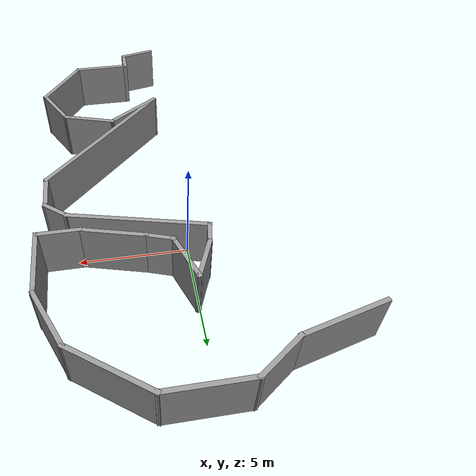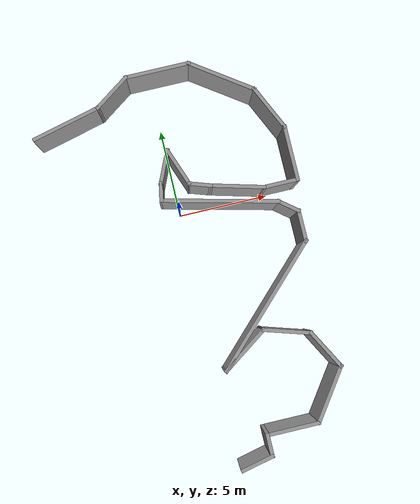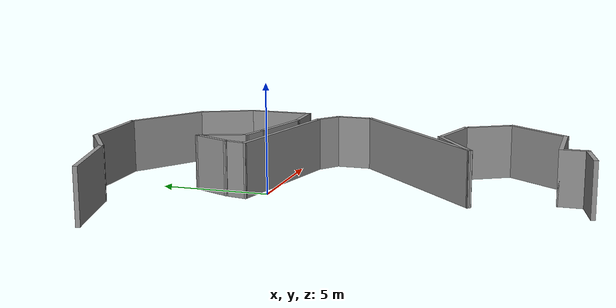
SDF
<sdf version='1.4'>
  <model name='paredesMontmelo'>
    <link name='Wall_100'>
      <collision name='Wall_100_Collision'>
        <geometry>
          <box>
            <size>1.861250 0.200000 2.500000</size>
          </box>
        </geometry>
        <pose>0.000000 0.000000 1.250000 0.000000 0.000000 0.000000</pose>
      </collision>
      <visual name='Wall_100_Visual'>
        <pose>0.000000 0.000000 1.250000 0.000000 0.000000 0.000000</pose>
        <geometry>
          <box>
            <size>1.861250 0.200000 2.500000</size>
          </box>
        </geometry>
        <material>
          <script>
            <uri>file://media/materials/scripts/gazebo.material</uri>
            <name>Gazebo/Grey</name>
          </script>
        </material>
      </visual>
      <velocity_decay>
        <linear>0.000000</linear>
        <angular>0.000000</angular>
      </velocity_decay>
      <pose>6.167900 -2.328510 0.000000 0.000000 0.000000 -1.570800</pose>
    </link>
    <link name='Wall_101'>
      <collision name='Wall_101_Collision'>
        <geometry>
          <box>
            <size>8.292260 0.200000 2.500000</size>
          </box>
        </geometry>
        <pose>0.000000 0.000000 1.250000 0.000000 0.000000 0.000000</pose>
      </collision>
      <visual name='Wall_101_Visual'>
        <pose>0.000000 0.000000 1.250000 0.000000 0.000000 0.000000</pose>
        <geometry>
          <box>
            <size>8.292260 0.200000 2.500000</size>
          </box>
        </geometry>
        <material>
          <script>
            <uri>file://media/materials/scripts/gazebo.material</uri>
            <name>Gazebo/Grey</name>
          </script>
        </material>
      </visual>
      <velocity_decay>
        <linear>0.000000</linear>
        <angular>0.000000</angular>
      </velocity_decay>
      <pose>3.306850 -6.020180 0.000000 0.000000 0.000000 -2.356190</pose>
    </link>
    <link name='Wall_102'>
      <collision name='Wall_102_Collision'>
        <geometry>
          <box>
            <size>3.118520 0.200000 2.500000</size>
          </box>
        </geometry>
        <pose>0.000000 0.000000 1.250000 0.000000 0.000000 0.000000</pose>
      </collision>
      <visual name='Wall_102_Visual'>
        <pose>0.000000 0.000000 1.250000 0.000000 0.000000 0.000000</pose>
        <geometry>
          <box>
            <size>3.118520 0.200000 2.500000</size>
          </box>
        </geometry>
        <material>
          <script>
            <uri>file://media/materials/scripts/gazebo.material</uri>
            <name>Gazebo/Grey</name>
          </script>
        </material>
      </visual>
      <velocity_decay>
        <linear>0.000000</linear>
        <angular>0.000000</angular>
      </velocity_decay>
      <pose>1.645600 -8.050600 0.000000 0.000000 0.000000 0.605545</pose>
    </link>
    <link name='Wall_103'>
      <collision name='Wall_103_Collision'>
        <geometry>
          <box>
            <size>2.710610 0.200000 2.500000</size>
          </box>
        </geometry>
        <pose>0.000000 0.000000 1.250000 0.000000 0.000000 0.000000</pose>
      </collision>
      <visual name='Wall_103_Visual'>
        <pose>0.000000 0.000000 1.250000 0.000000 0.000000 0.000000</pose>
        <geometry>
          <box>
            <size>2.710610 0.200000 2.500000</size>
          </box>
        </geometry>
        <material>
          <script>
            <uri>file://media/materials/scripts/gazebo.material</uri>
            <name>Gazebo/Grey</name>
          </script>
        </material>
      </visual>
      <velocity_decay>
        <linear>0.000000</linear>
        <angular>0.000000</angular>
      </velocity_decay>
      <pose>4.045190 -7.589140 0.000000 0.000000 0.000000 -0.298499</pose>
    </link>
    <link name='Wall_104'>
      <collision name='Wall_104_Collision'>
        <geometry>
          <box>
            <size>2.512830 0.200000 2.500000</size>
          </box>
        </geometry>
        <pose>0.000000 0.000000 1.250000 0.000000 0.000000 0.000000</pose>
      </collision>
      <visual name='Wall_104_Visual'>
        <pose>0.000000 0.000000 1.250000 0.000000 0.000000 0.000000</pose>
        <geometry>
          <box>
            <size>2.512830 0.200000 2.500000</size>
          </box>
        </geometry>
        <material>
          <script>
            <uri>file://media/materials/scripts/gazebo.material</uri>
            <name>Gazebo/Grey</name>
          </script>
        </material>
      </visual>
      <velocity_decay>
        <linear>0.000000</linear>
        <angular>0.000000</angular>
      </velocity_decay>
      <pose>5.798730 -8.973520 0.000000 0.000000 0.000000 -1.071450</pose>
    </link>
    <link name='Wall_105'>
      <collision name='Wall_105_Collision'>
        <geometry>
          <box>
            <size>3.375700 0.200000 2.500000</size>
          </box>
        </geometry>
        <pose>0.000000 0.000000 1.250000 0.000000 0.000000 0.000000</pose>
      </collision>
      <visual name='Wall_105_Visual'>
        <pose>0.000000 0.000000 1.250000 0.000000 0.000000 0.000000</pose>
        <geometry>
          <box>
            <size>3.375700 0.200000 2.500000</size>
          </box>
        </geometry>
        <material>
          <script>
            <uri>file://media/materials/scripts/gazebo.material</uri>
            <name>Gazebo/Grey</name>
          </script>
        </material>
      </visual>
      <velocity_decay>
        <linear>0.000000</linear>
        <angular>0.000000</angular>
      </velocity_decay>
      <pose>5.429570 -11.280800 0.000000 0.000000 0.000000 -2.191050</pose>
    </link>
    <link name='Wall_106'>
      <collision name='Wall_106_Collision'>
        <geometry>
          <box>
            <size>2.968750 0.200000 2.500000</size>
          </box>
        </geometry>
        <pose>0.000000 0.000000 1.250000 0.000000 0.000000 0.000000</pose>
      </collision>
      <visual name='Wall_106_Visual'>
        <pose>0.000000 0.000000 1.250000 0.000000 0.000000 0.000000</pose>
        <geometry>
          <box>
            <size>2.968750 0.200000 2.500000</size>
          </box>
        </geometry>
        <material>
          <script>
            <uri>file://media/materials/scripts/gazebo.material</uri>
            <name>Gazebo/Grey</name>
          </script>
        </material>
      </visual>
      <velocity_decay>
        <linear>0.000000</linear>
        <angular>0.000000</angular>
      </velocity_decay>
      <pose>3.122270 -12.572900 0.000000 0.000000 0.000000 3.141590</pose>
    </link>
    <link name='Wall_107'>
      <collision name='Wall_107_Collision'>
        <geometry>
          <box>
            <size>1.307500 0.200000 2.500000</size>
          </box>
        </geometry>
        <pose>0.000000 0.000000 1.250000 0.000000 0.000000 0.000000</pose>
      </collision>
      <visual name='Wall_107_Visual'>
        <pose>0.000000 0.000000 1.250000 0.000000 0.000000 0.000000</pose>
        <geometry>
          <box>
            <size>1.307500 0.200000 2.500000</size>
          </box>
        </geometry>
        <material>
          <script>
            <uri>file://media/materials/scripts/gazebo.material</uri>
            <name>Gazebo/Grey</name>
          </script>
        </material>
      </visual>
      <velocity_decay>
        <linear>0.000000</linear>
        <angular>0.000000</angular>
      </velocity_decay>
      <pose>1.737890 -13.126600 0.000000 0.000000 0.000000 -1.570800</pose>
    </link>
    <link name='Wall_108'>
      <collision name='Wall_108_Collision'>
        <geometry>
          <box>
            <size>1.901780 0.200000 2.500000</size>
          </box>
        </geometry>
        <pose>0.000000 0.000000 1.250000 0.000000 0.000000 0.000000</pose>
      </collision>
      <visual name='Wall_108_Visual'>
        <pose>0.000000 0.000000 1.250000 0.000000 0.000000 0.000000</pose>
        <geometry>
          <box>
            <size>1.901780 0.200000 2.500000</size>
          </box>
        </geometry>
        <material>
          <script>
            <uri>file://media/materials/scripts/gazebo.material</uri>
            <name>Gazebo/Grey</name>
          </script>
        </material>
      </visual>
      <velocity_decay>
        <linear>0.000000</linear>
        <angular>0.000000</angular>
      </velocity_decay>
      <pose>0.907267 -13.865000 0.000000 0.000000 0.000000 -2.922920</pose>
    </link>
    <link name='Wall_86'>
      <collision name='Wall_86_Collision'>
        <geometry>
          <box>
            <size>4.005290 0.200000 2.500000</size>
          </box>
        </geometry>
        <pose>0.000000 0.000000 1.250000 0.000000 0.000000 0.000000</pose>
      </collision>
      <visual name='Wall_86_Visual'>
        <pose>0.000000 0.000000 1.250000 0.000000 0.000000 0.000000</pose>
        <geometry>
          <box>
            <size>4.005290 0.200000 2.500000</size>
          </box>
        </geometry>
        <material>
          <script>
            <uri>file://media/materials/scripts/gazebo.material</uri>
            <name>Gazebo/Grey</name>
          </script>
        </material>
      </visual>
      <velocity_decay>
        <linear>0.000000</linear>
        <angular>0.000000</angular>
      </velocity_decay>
      <pose>-4.907120 5.977760 0.000000 0.000000 0.000000 0.244979</pose>
    </link>
    <link name='Wall_87'>
      <collision name='Wall_87_Collision'>
        <geometry>
          <box>
            <size>2.453130 0.200000 2.500000</size>
          </box>
        </geometry>
        <pose>0.000000 0.000000 1.250000 0.000000 0.000000 0.000000</pose>
      </collision>
      <visual name='Wall_87_Visual'>
        <pose>0.000000 0.000000 1.250000 0.000000 0.000000 0.000000</pose>
        <geometry>
          <box>
            <size>2.453130 0.200000 2.500000</size>
          </box>
        </geometry>
        <material>
          <script>
            <uri>file://media/materials/scripts/gazebo.material</uri>
            <name>Gazebo/Grey</name>
          </script>
        </material>
      </visual>
      <velocity_decay>
        <linear>0.000000</linear>
        <angular>0.000000</angular>
      </velocity_decay>
      <pose>-2.138360 7.085260 0.000000 0.000000 0.000000 0.610726</pose>
    </link>
    <link name='Wall_88'>
      <collision name='Wall_88_Collision'>
        <geometry>
          <box>
            <size>3.707090 0.200000 2.500000</size>
          </box>
        </geometry>
        <pose>0.000000 0.000000 1.250000 0.000000 0.000000 0.000000</pose>
      </collision>
      <visual name='Wall_88_Visual'>
        <pose>0.000000 0.000000 1.250000 0.000000 0.000000 0.000000</pose>
        <geometry>
          <box>
            <size>3.707090 0.200000 2.500000</size>
          </box>
        </geometry>
        <material>
          <script>
            <uri>file://media/materials/scripts/gazebo.material</uri>
            <name>Gazebo/Grey</name>
          </script>
        </material>
      </visual>
      <velocity_decay>
        <linear>0.000000</linear>
        <angular>0.000000</angular>
      </velocity_decay>
      <pose>0.538099 7.731300 0.000000 0.000000 0.000000 0.000000</pose>
    </link>
    <link name='Wall_89'>
      <collision name='Wall_89_Collision'>
        <geometry>
          <box>
            <size>4.040940 0.200000 2.500000</size>
          </box>
        </geometry>
        <pose>0.000000 0.000000 1.250000 0.000000 0.000000 0.000000</pose>
      </collision>
      <visual name='Wall_89_Visual'>
        <pose>0.000000 0.000000 1.250000 0.000000 0.000000 0.000000</pose>
        <geometry>
          <box>
            <size>4.040940 0.200000 2.500000</size>
          </box>
        </geometry>
        <material>
          <script>
            <uri>file://media/materials/scripts/gazebo.material</uri>
            <name>Gazebo/Grey</name>
          </script>
        </material>
      </visual>
      <velocity_decay>
        <linear>0.000000</linear>
        <angular>0.000000</angular>
      </velocity_decay>
      <pose>3.860610 6.623800 0.000000 0.000000 0.000000 -0.614663</pose>
    </link>
    <link name='Wall_90'>
      <collision name='Wall_90_Collision'>
        <geometry>
          <box>
            <size>2.842840 0.200000 2.500000</size>
          </box>
        </geometry>
        <pose>0.000000 0.000000 1.250000 0.000000 0.000000 0.000000</pose>
      </collision>
      <visual name='Wall_90_Visual'>
        <pose>0.000000 0.000000 1.250000 0.000000 0.000000 0.000000</pose>
        <geometry>
          <box>
            <size>2.842840 0.200000 2.500000</size>
          </box>
        </geometry>
        <material>
          <script>
            <uri>file://media/materials/scripts/gazebo.material</uri>
            <name>Gazebo/Grey</name>
          </script>
        </material>
      </visual>
      <velocity_decay>
        <linear>0.000000</linear>
        <angular>0.000000</angular>
      </velocity_decay>
      <pose>5.983320 4.316510 0.000000 0.000000 0.000000 -1.138390</pose>
    </link>
    <link name='Wall_91'>
      <collision name='Wall_91_Collision'>
        <geometry>
          <box>
            <size>3.153340 0.200000 2.500000</size>
          </box>
        </geometry>
        <pose>0.000000 0.000000 1.250000 0.000000 0.000000 0.000000</pose>
      </collision>
      <visual name='Wall_91_Visual'>
        <pose>0.000000 0.000000 1.250000 0.000000 0.000000 0.000000</pose>
        <geometry>
          <box>
            <size>3.153340 0.200000 2.500000</size>
          </box>
        </geometry>
        <material>
          <script>
            <uri>file://media/materials/scripts/gazebo.material</uri>
            <name>Gazebo/Grey</name>
          </script>
        </material>
      </visual>
      <velocity_decay>
        <linear>0.000000</linear>
        <angular>0.000000</angular>
      </velocity_decay>
      <pose>6.537070 1.640040 0.000000 0.000000 0.000000 -1.570800</pose>
    </link>
    <link name='Wall_92'>
      <collision name='Wall_92_Collision'>
        <geometry>
          <box>
            <size>2.045840 0.200000 2.500000</size>
          </box>
        </geometry>
        <pose>0.000000 0.000000 1.250000 0.000000 0.000000 0.000000</pose>
      </collision>
      <visual name='Wall_92_Visual'>
        <pose>0.000000 0.000000 1.250000 0.000000 0.000000 0.000000</pose>
        <geometry>
          <box>
            <size>2.045840 0.200000 2.500000</size>
          </box>
        </geometry>
        <material>
          <script>
            <uri>file://media/materials/scripts/gazebo.material</uri>
            <name>Gazebo/Grey</name>
          </script>
        </material>
      </visual>
      <velocity_decay>
        <linear>0.000000</linear>
        <angular>0.000000</angular>
      </velocity_decay>
      <pose>5.614150 0.163373 0.000000 0.000000 0.000000 3.141590</pose>
    </link>
    <link name='Wall_93'>
      <collision name='Wall_93_Collision'>
        <geometry>
          <box>
            <size>3.065510 0.200000 2.500000</size>
          </box>
        </geometry>
        <pose>0.000000 0.000000 1.250000 0.000000 0.000000 0.000000</pose>
      </collision>
      <visual name='Wall_93_Visual'>
        <pose>0.000000 0.000000 1.250000 0.000000 0.000000 0.000000</pose>
        <geometry>
          <box>
            <size>3.065510 0.200000 2.500000</size>
          </box>
        </geometry>
        <material>
          <script>
            <uri>file://media/materials/scripts/gazebo.material</uri>
            <name>Gazebo/Grey</name>
          </script>
        </material>
      </visual>
      <velocity_decay>
        <linear>0.000000</linear>
        <angular>0.000000</angular>
      </velocity_decay>
      <pose>3.306850 0.532541 0.000000 0.000000 0.000000 2.880990</pose>
    </link>
    <link name='Wall_94'>
      <collision name='Wall_94_Collision'>
        <geometry>
          <box>
            <size>1.367410 0.200000 2.500000</size>
          </box>
        </geometry>
        <pose>0.000000 0.000000 1.250000 0.000000 0.000000 0.000000</pose>
      </collision>
      <visual name='Wall_94_Visual'>
        <pose>0.000000 0.000000 1.250000 0.000000 0.000000 0.000000</pose>
        <geometry>
          <box>
            <size>1.367410 0.200000 2.500000</size>
          </box>
        </geometry>
        <material>
          <script>
            <uri>file://media/materials/scripts/gazebo.material</uri>
            <name>Gazebo/Grey</name>
          </script>
        </material>
      </visual>
      <velocity_decay>
        <linear>0.000000</linear>
        <angular>0.000000</angular>
      </velocity_decay>
      <pose>1.368730 1.086290 0.000000 0.000000 0.000000 2.819840</pose>
    </link>
    <link name='Wall_95'>
      <collision name='Wall_95_Collision'>
        <geometry>
          <box>
            <size>2.360500 0.200000 2.500000</size>
          </box>
        </geometry>
        <pose>0.000000 0.000000 1.250000 0.000000 0.000000 0.000000</pose>
      </collision>
      <visual name='Wall_95_Visual'>
        <pose>0.000000 0.000000 1.250000 0.000000 0.000000 0.000000</pose>
        <geometry>
          <box>
            <size>2.360500 0.200000 2.500000</size>
          </box>
        </geometry>
        <material>
          <script>
            <uri>file://media/materials/scripts/gazebo.material</uri>
            <name>Gazebo/Grey</name>
          </script>
        </material>
      </visual>
      <velocity_decay>
        <linear>0.000000</linear>
        <angular>0.000000</angular>
      </velocity_decay>
      <pose>0.445808 2.286080 0.000000 0.000000 0.000000 1.919570</pose>
    </link>
    <link name='Wall_96'>
      <collision name='Wall_96_Collision'>
        <geometry>
          <box>
            <size>2.017940 0.200000 2.500000</size>
          </box>
        </geometry>
        <pose>0.000000 0.000000 1.250000 0.000000 0.000000 0.000000</pose>
      </collision>
      <visual name='Wall_96_Visual'>
        <pose>0.000000 0.000000 1.250000 0.000000 0.000000 0.000000</pose>
        <geometry>
          <box>
            <size>2.017940 0.200000 2.500000</size>
          </box>
        </geometry>
        <material>
          <script>
            <uri>file://media/materials/scripts/gazebo.material</uri>
            <name>Gazebo/Grey</name>
          </script>
        </material>
      </visual>
      <velocity_decay>
        <linear>0.000000</linear>
        <angular>0.000000</angular>
      </velocity_decay>
      <pose>-0.292527 2.470670 0.000000 0.000000 0.000000 -1.989020</pose>
    </link>
    <link name='Wall_97'>
      <collision name='Wall_97_Collision'>
        <geometry>
          <box>
            <size>1.141200 0.200000 2.500000</size>
          </box>
        </geometry>
        <pose>0.000000 0.000000 1.250000 0.000000 0.000000 0.000000</pose>
      </collision>
      <visual name='Wall_97_Visual'>
        <pose>0.000000 0.000000 1.250000 0.000000 0.000000 0.000000</pose>
        <geometry>
          <box>
            <size>1.141200 0.200000 2.500000</size>
          </box>
        </geometry>
        <material>
          <script>
            <uri>file://media/materials/scripts/gazebo.material</uri>
            <name>Gazebo/Grey</name>
          </script>
        </material>
      </visual>
      <velocity_decay>
        <linear>0.000000</linear>
        <angular>0.000000</angular>
      </velocity_decay>
      <pose>-0.753986 1.178580 0.000000 0.000000 0.000000 -1.768190</pose>
    </link>
    <link name='Wall_98'>
      <collision name='Wall_98_Collision'>
        <geometry>
          <box>
            <size>6.467690 0.200000 2.500000</size>
          </box>
        </geometry>
        <pose>0.000000 0.000000 1.250000 0.000000 0.000000 0.000000</pose>
      </collision>
      <visual name='Wall_98_Visual'>
        <pose>0.000000 0.000000 1.250000 0.000000 0.000000 0.000000</pose>
        <geometry>
          <box>
            <size>6.467690 0.200000 2.500000</size>
          </box>
        </geometry>
        <material>
          <script>
            <uri>file://media/materials/scripts/gazebo.material</uri>
            <name>Gazebo/Grey</name>
          </script>
        </material>
      </visual>
      <velocity_decay>
        <linear>0.000000</linear>
        <angular>0.000000</angular>
      </velocity_decay>
      <pose>2.199350 -0.021210 0.000000 0.000000 0.000000 -0.237836</pose>
    </link>
    <link name='Wall_99'>
      <collision name='Wall_99_Collision'>
        <geometry>
          <box>
            <size>1.381910 0.200000 2.500000</size>
          </box>
        </geometry>
        <pose>0.000000 0.000000 1.250000 0.000000 0.000000 0.000000</pose>
      </collision>
      <visual name='Wall_99_Visual'>
        <pose>0.000000 0.000000 1.250000 0.000000 0.000000 0.000000</pose>
        <geometry>
          <box>
            <size>1.381910 0.200000 2.500000</size>
          </box>
        </geometry>
        <material>
          <script>
            <uri>file://media/materials/scripts/gazebo.material</uri>
            <name>Gazebo/Grey</name>
          </script>
        </material>
      </visual>
      <velocity_decay>
        <linear>0.000000</linear>
        <angular>0.000000</angular>
      </velocity_decay>
      <pose>5.706440 -1.128710 0.000000 0.000000 0.000000 -0.674741</pose>
    </link>
    <static>1</static>
  </model>
</sdf>
